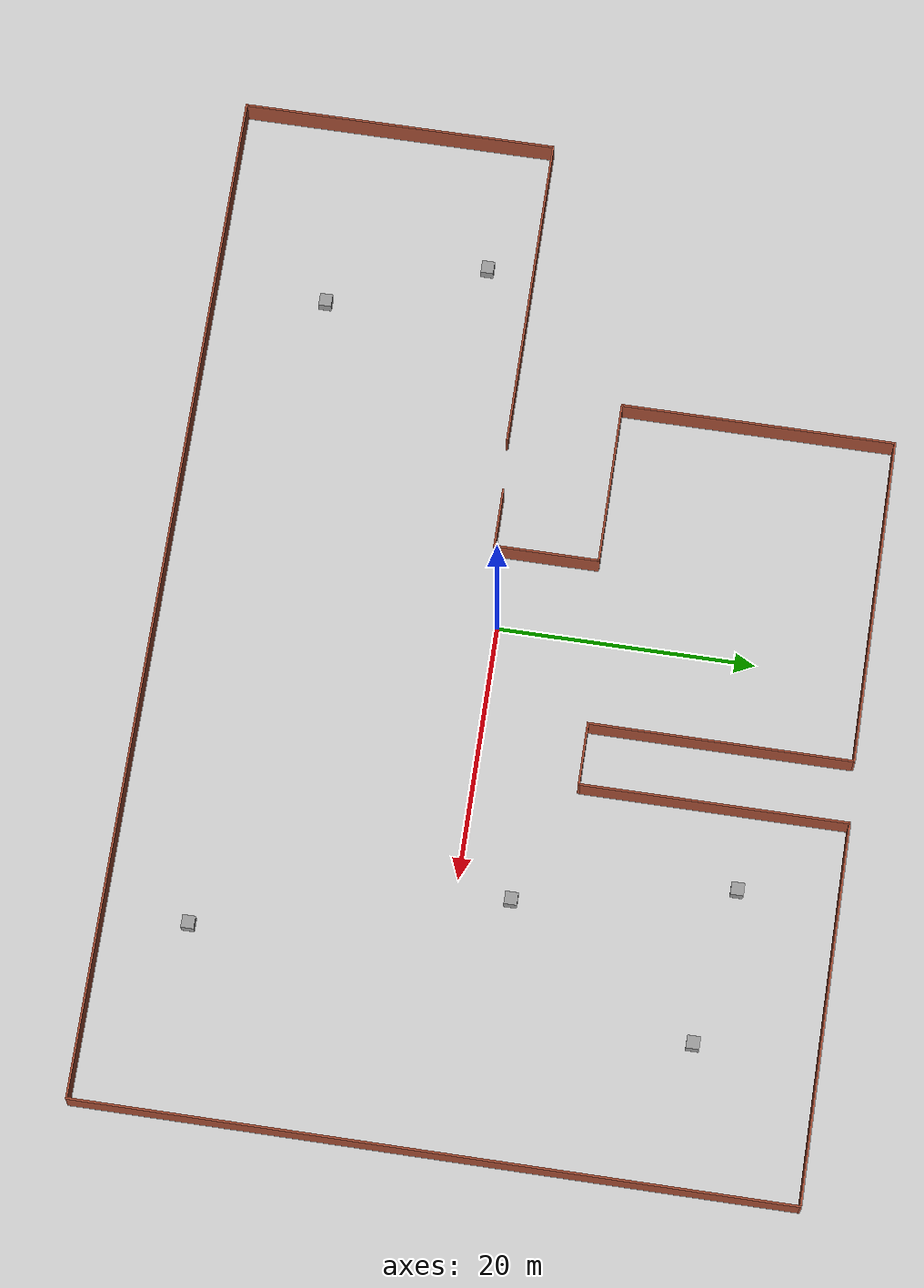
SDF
<sdf version="1.7">
 <world name="default">
  <light name="sun" type="directional">
   <pose>0 0 10 0 -0 0</pose>
   <diffuse>0.8 0.8 0.8 1</diffuse>
   <specular>0.2 0.2 0.2 1</specular>
   <attenuation>
    <range>1000</range>
    <constant>0.9</constant>
    <linear>0.01</linear>
    <quadratic>0.001</quadratic>
   </attenuation>
   <direction>-0.5 0.1 -0.9</direction>
   <spot><inner_angle>0</inner_angle><outer_angle>0</outer_angle><falloff>0</falloff></spot>
  </light>
  <model name="ground_plane">
   <static>1</static>
   <link name="link">
    <collision name="collision">
     <geometry><plane><normal>0 0 1</normal><size>100 100</size></plane></geometry>
     <surface>
      <contact><collide_bitmask>65535</collide_bitmask></contact>
      <friction><ode><mu>100</mu><mu2>50</mu2></ode></friction>
     </surface>
    </collision>
    <visual name="visual">
     <cast_shadows>0</cast_shadows>
     <geometry><plane><normal>0 0 1</normal><size>100 100</size></plane></geometry>
     <material>
      <script><uri>file://media/materials/scripts/gazebo.material</uri><name>Gazebo/Grey</name></script>
     </material>
    </visual>
   </link>
  </model>
  <gravity>0 0 -9.8</gravity>
  <magnetic_field>6e-06 2.3e-05 -4.2e-05</magnetic_field>
  <atmosphere type="adiabatic"/>
  <physics type="ode">
   <max_step_size>0.001</max_step_size>
   <real_time_factor>1</real_time_factor>
   <real_time_update_rate>1000</real_time_update_rate>
  </physics>
  <scene><ambient>0.4 0.4 0.4 1</ambient><background>0.7 0.7 0.7 1</background><shadows>1</shadows></scene>
  <audio><device>default</device></audio>
  <spherical_coordinates>
   <surface_model>EARTH_WGS84</surface_model>
   <latitude_deg>0</latitude_deg>
   <longitude_deg>0</longitude_deg>
   <elevation>0</elevation>
   <heading_deg>0</heading_deg>
  </spherical_coordinates>
  <model name="house">
   <pose>0.903247 1.30382 0 0 -0 0</pose>
   <link name="Wall_0">
    <collision name="Wall_0_Collision">
     <geometry><box><size>25 0.15 2.5</size></box></geometry>
     <pose>0 0 1.25 0 -0 0</pose>
    </collision>
    <visual name="Wall_0_Visual">
     <pose>0 0 1.25 0 -0 0</pose>
     <geometry><box><size>25 0.15 2.5</size></box></geometry>
     <material>
      <script><uri>file://media/materials/scripts/gazebo.material</uri><name>Gazebo/Bricks</name></script>
      <ambient>1 1 1 1</ambient>
     </material>
     <meta><layer>0</layer></meta>
    </visual>
    <pose>-28 -2.7 0 0 -0 3.14159</pose>
   </link>
   <link name="Wall_1">
    <collision name="Wall_1_Collision">
     <geometry><box><size>24.75 0.15 2.5</size></box></geometry>
     <pose>0 0 1.25 0 -0 0</pose>
    </collision>
    <visual name="Wall_1_Visual">
     <pose>0 0 1.25 0 -0 0</pose>
     <geometry><box><size>24.75 0.15 2.5</size></box></geometry>
     <material>
      <script><uri>file://media/materials/scripts/gazebo.material</uri><name>Gazebo/Bricks</name></script>
      <ambient>1 1 1 1</ambient>
     </material>
     <meta><layer>0</layer></meta>
    </visual>
    <pose>-40.425 -15 0 0 -0 -1.5708</pose>
   </link>
   <link name="Wall_10">
    <collision name="Wall_10_Collision">
     <geometry><box><size>13 0.15 2.5</size></box></geometry>
     <pose>0 0 1.25 0 -0 0</pose>
    </collision>
    <visual name="Wall_10_Visual">
     <pose>0 0 1.25 0 -0 0</pose>
     <geometry><box><size>13 0.15 2.5</size></box></geometry>
     <material>
      <script><uri>file://media/materials/scripts/gazebo.material</uri><name>Gazebo/Bricks</name></script>
      <ambient>1 1 1 1</ambient>
     </material>
     <meta><layer>0</layer></meta>
    </visual>
    <pose>-13.2 5.7 0 0 -0 0</pose>
   </link>
   <link name="Wall_11">
    <collision name="Wall_11_Collision">
     <geometry><box><size>8.25 0.15 2.5</size></box></geometry>
     <pose>0 0 1.25 0 -0 0</pose>
    </collision>
    <visual name="Wall_11_Visual">
     <pose>0 0 1.25 0 -0 0</pose>
     <geometry><box><size>8.25 0.15 2.5</size></box></geometry>
     <material>
      <script><uri>file://media/materials/scripts/gazebo.material</uri><name>Gazebo/Bricks</name></script>
      <ambient>1 1 1 1</ambient>
     </material>
     <meta><layer>0</layer></meta>
    </visual>
    <pose>-6.775 1.65 0 0 -0 -1.5708</pose>
   </link>
   <link name="Wall_12">
    <collision name="Wall_12_Collision">
     <geometry><box><size>4.75 0.15 2.5</size></box></geometry>
     <pose>0 0 1.25 0 -0 0</pose>
    </collision>
    <visual name="Wall_12_Visual">
     <pose>0 0 1.25 0 -0 0</pose>
     <geometry><box><size>4.75 0.15 2.5</size></box></geometry>
     <material>
      <script><uri>file://media/materials/scripts/gazebo.material</uri><name>Gazebo/Bricks</name></script>
      <ambient>1 1 1 1</ambient>
     </material>
     <meta><layer>0</layer></meta>
    </visual>
    <pose>-9.075 -2.4 0 0 -0 3.14159</pose>
   </link>
   <link name="Wall_2">
    <collision name="Wall_2_Collision">
     <geometry><box><size>81 0.15 2.5</size></box></geometry>
     <pose>0 0 1.25 0 -0 0</pose>
    </collision>
    <visual name="Wall_2_Visual">
     <pose>0 0 1.25 0 -0 0</pose>
     <geometry><box><size>81 0.15 2.5</size></box></geometry>
     <material>
      <script><uri>file://media/materials/scripts/gazebo.material</uri><name>Gazebo/Bricks</name></script>
      <ambient>1 1 1 1</ambient>
     </material>
     <meta><layer>0</layer></meta>
    </visual>
    <pose>-3e-06 -27.3 0 0 -0 0</pose>
   </link>
   <link name="Wall_3">
    <collision name="Wall_3_Collision">
     <geometry><box><size>54.75 0.15 2.5</size></box></geometry>
     <pose>0 0 1.25 0 -0 0</pose>
    </collision>
    <visual name="Wall_3_Visual">
     <pose>0 0 1.25 0 -0 0</pose>
     <geometry><box><size>54.75 0.15 2.5</size></box></geometry>
     <material>
      <script><uri>file://media/materials/scripts/gazebo.material</uri><name>Gazebo/Bricks</name></script>
      <ambient>1 1 1 1</ambient>
     </material>
     <meta><layer>0</layer></meta>
    </visual>
    <pose>40.425 -1e-06 0 0 -0 1.5708</pose>
   </link>
   <link name="Wall_4">
    <collision name="Wall_4_Collision">
     <geometry><box><size>29.5 0.15 2.5</size></box></geometry>
     <pose>0 0 1.25 0 -0 0</pose>
    </collision>
    <visual name="Wall_4_Visual">
     <pose>0 0 1.25 0 -0 0</pose>
     <geometry><box><size>29.5 0.15 2.5</size></box></geometry>
     <material>
      <script><uri>file://media/materials/scripts/gazebo.material</uri><name>Gazebo/Bricks</name></script>
      <ambient>1 1 1 1</ambient>
     </material>
     <meta><layer>0</layer></meta>
    </visual>
    <pose>25.75 27.3 0 0 -0 3.14159</pose>
   </link>
   <link name="Wall_5">
    <collision name="Wall_5_Collision">
     <geometry><box><size>20.75 0.15 2.5</size></box></geometry>
     <pose>0 0 1.25 0 -0 0</pose>
    </collision>
    <visual name="Wall_5_Visual">
     <pose>0 0 1.25 0 -0 0</pose>
     <geometry><box><size>20.75 0.15 2.5</size></box></geometry>
     <material>
      <script><uri>file://media/materials/scripts/gazebo.material</uri><name>Gazebo/Bricks</name></script>
      <ambient>1 1 1 1</ambient>
     </material>
     <meta><layer>0</layer></meta>
    </visual>
    <pose>11.075 17 0 0 -0 -1.5708</pose>
   </link>
   <link name="Wall_6">
    <collision name="Wall_6_Collision">
     <geometry><box><size>5 0.15 2.5</size></box></geometry>
     <pose>0 0 1.25 0 -0 0</pose>
    </collision>
    <visual name="Wall_6_Visual">
     <pose>0 0 1.25 0 -0 0</pose>
     <geometry><box><size>5 0.15 2.5</size></box></geometry>
     <material>
      <script><uri>file://media/materials/scripts/gazebo.material</uri><name>Gazebo/Bricks</name></script>
      <ambient>1 1 1 1</ambient>
     </material>
     <meta><layer>0</layer></meta>
    </visual>
    <pose>8.65 6.7 0 0 -0 3.14159</pose>
   </link>
   <link name="Wall_7">
    <collision name="Wall_7_Collision">
     <geometry><box><size>20.5 0.15 2.5</size></box></geometry>
     <pose>0 0 1.25 0 -0 0</pose>
    </collision>
    <visual name="Wall_7_Visual">
     <pose>0 0 1.25 0 -0 0</pose>
     <geometry><box><size>20.5 0.15 2.5</size></box></geometry>
     <material>
      <script><uri>file://media/materials/scripts/gazebo.material</uri><name>Gazebo/Bricks</name></script>
      <ambient>1 1 1 1</ambient>
     </material>
     <meta><layer>0</layer></meta>
    </visual>
    <pose>6.225 16.875 0 0 -0 1.5708</pose>
   </link>
   <link name="Wall_8">
    <collision name="Wall_8_Collision">
     <geometry><box><size>26 0.15 2.5</size></box></geometry>
     <pose>0 0 1.25 0 -0 0</pose>
    </collision>
    <visual name="Wall_8_Visual">
     <pose>0 0 1.25 0 -0 0</pose>
     <geometry><box><size>26 0.15 2.5</size></box></geometry>
     <material>
      <script><uri>file://media/materials/scripts/gazebo.material</uri><name>Gazebo/Bricks</name></script>
      <ambient>1 1 1 1</ambient>
     </material>
     <meta><layer>0</layer></meta>
    </visual>
    <pose>-6.7 27.05 0 0 -0 3.14159</pose>
   </link>
   <link name="Wall_9">
    <collision name="Wall_9_Collision">
     <geometry><box><size>21.5 0.15 2.5</size></box></geometry>
     <pose>0 0 1.25 0 -0 0</pose>
    </collision>
    <visual name="Wall_9_Visual">
     <pose>0 0 1.25 0 -0 0</pose>
     <geometry><box><size>21.5 0.15 2.5</size></box></geometry>
     <material>
      <script><uri>file://media/materials/scripts/gazebo.material</uri><name>Gazebo/Bricks</name></script>
      <ambient>1 1 1 1</ambient>
     </material>
     <meta><layer>0</layer></meta>
    </visual>
    <pose>-19.625 16.375 0 0 -0 -1.5708</pose>
   </link>
   <static>1</static>
  </model>
  <model name="unit_box">
   <pose>-24.6183 -17.2906 0.499995 0 1e-05 0</pose>
   <link name="link">
    <inertial>
     <mass>1</mass>
     <inertia>
      <ixx>0.166667</ixx>
      <ixy>0</ixy>
      <ixz>0</ixz>
      <iyy>0.166667</iyy>
      <iyz>0</iyz>
      <izz>0.166667</izz>
     </inertia>
    </inertial>
    <collision name="collision"><geometry><box><size>1 1 1</size></box></geometry></collision>
    <visual name="visual">
     <geometry><box><size>1 1 1</size></box></geometry>
     <material>
      <script><name>Gazebo/Grey</name><uri>file://media/materials/scripts/gazebo.material</uri></script>
     </material>
    </visual>
   </link>
  </model>
  <model name="unit_box_1">
   <pose>-29.2359 -5.09789 0.499995 0 1e-05 0</pose>
   <link name="link">
    <inertial>
     <mass>1</mass>
     <inertia>
      <ixx>0.166667</ixx>
      <ixy>0</ixy>
      <ixz>0</ixz>
      <iyy>0.166667</iyy>
      <iyz>0</iyz>
      <izz>0.166667</izz>
     </inertia>
    </inertial>
    <collision name="collision"><geometry><box><size>1 1 1</size></box></geometry></collision>
    <visual name="visual">
     <geometry><box><size>1 1 1</size></box></geometry>
     <material>
      <script><name>Gazebo/Grey</name><uri>file://media/materials/scripts/gazebo.material</uri></script>
     </material>
    </visual>
   </link>
  </model>
  <model name="unit_box_2">
   <pose>26.4753 -19.5238 0.499995 -1e-05 -0 -0</pose>
   <link name="link">
    <inertial>
     <mass>1</mass>
     <inertia>
      <ixx>0.166667</ixx>
      <ixy>0</ixy>
      <ixz>0</ixz>
      <iyy>0.166667</iyy>
      <iyz>0</iyz>
      <izz>0.166667</izz>
     </inertia>
    </inertial>
    <collision name="collision"><geometry><box><size>1 1 1</size></box></geometry></collision>
    <visual name="visual">
     <geometry><box><size>1 1 1</size></box></geometry>
     <material>
      <script><name>Gazebo/Grey</name><uri>file://media/materials/scripts/gazebo.material</uri></script>
     </material>
    </visual>
   </link>
  </model>
  <model name="unit_box_6">
   <pose>30.0178 19.202 0.499995 -1e-05 -0 -0</pose>
   <link name="link">
    <inertial>
     <mass>1</mass>
     <inertia>
      <ixx>0.166667</ixx>
      <ixy>0</ixy>
      <ixz>0</ixz>
      <iyy>0.166667</iyy>
      <iyz>0</iyz>
      <izz>0.166667</izz>
     </inertia>
    </inertial>
    <collision name="collision"><geometry><box><size>1 1 1</size></box></geometry></collision>
    <visual name="visual">
     <geometry><box><size>1 1 1</size></box></geometry>
     <material>
      <script><name>Gazebo/Grey</name><uri>file://media/materials/scripts/gazebo.material</uri></script>
     </material>
    </visual>
   </link>
  </model>
  <model name="unit_box_7">
   <pose>17.8685 20.9412 0.499995 0 1e-05 0</pose>
   <link name="link">
    <inertial>
     <mass>1</mass>
     <inertia>
      <ixx>0.166667</ixx>
      <ixy>0</ixy>
      <ixz>0</ixz>
      <iyy>0.166667</iyy>
      <iyz>0</iyz>
      <izz>0.166667</izz>
     </inertia>
    </inertial>
    <collision name="collision"><geometry><box><size>1 1 1</size></box></geometry></collision>
    <visual name="visual">
     <geometry><box><size>1 1 1</size></box></geometry>
     <material>
      <script><name>Gazebo/Grey</name><uri>file://media/materials/scripts/gazebo.material</uri></script>
     </material>
    </visual>
   </link>
  </model>
  <model name="unit_box_8">
   <pose>21.0995 4.19064 0.499995 -1e-05 -0 -0</pose>
   <link name="link">
    <inertial>
     <mass>1</mass>
     <inertia>
      <ixx>0.166667</ixx>
      <ixy>0</ixy>
      <ixz>0</ixz>
      <iyy>0.166667</iyy>
      <iyz>0</iyz>
      <izz>0.166667</izz>
     </inertia>
    </inertial>
    <collision name="collision"><geometry><box><size>1 1 1</size></box></geometry></collision>
    <visual name="visual">
     <geometry><box><size>1 1 1</size></box></geometry>
     <material>
      <script><name>Gazebo/Grey</name><uri>file://media/materials/scripts/gazebo.material</uri></script>
     </material>
    </visual>
   </link>
  </model>
 </world>
</sdf>
